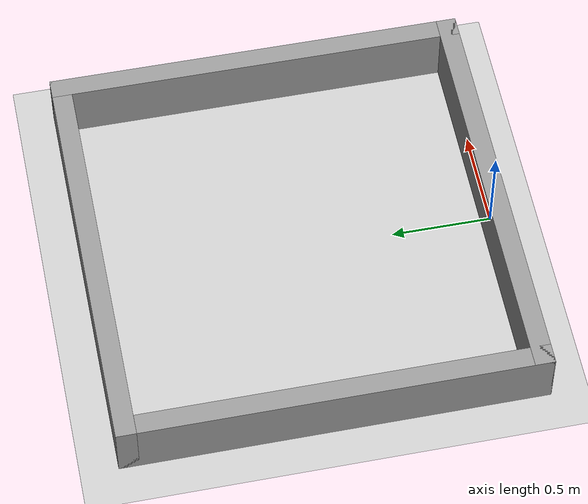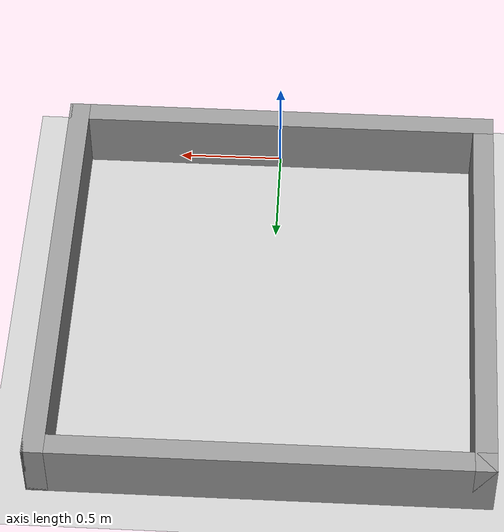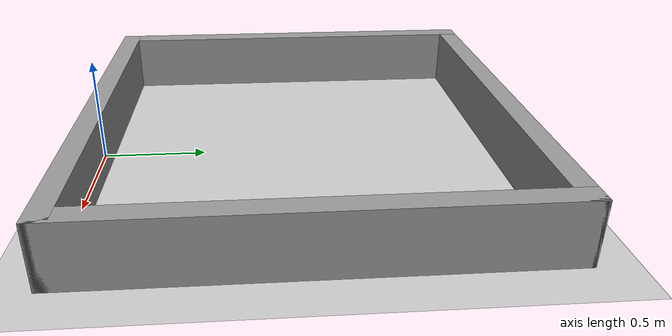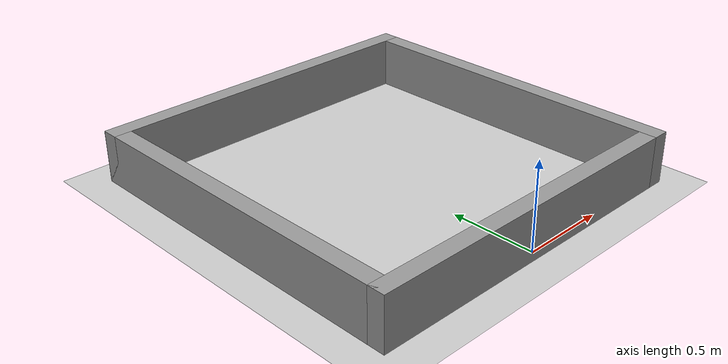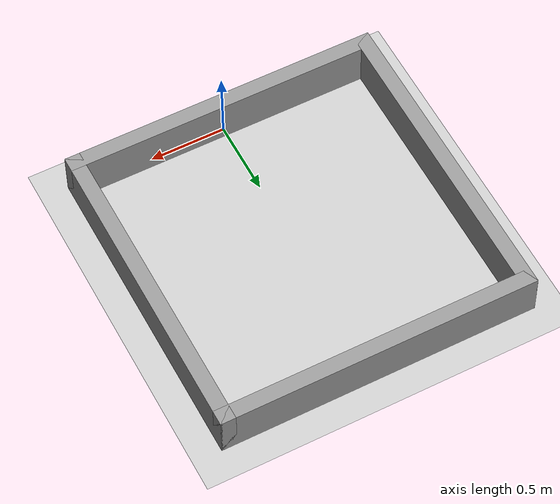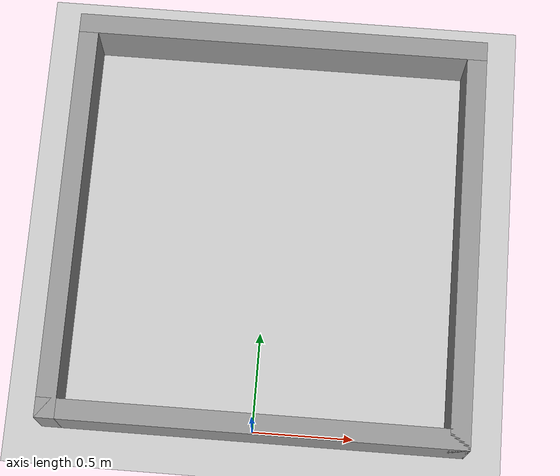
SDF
<sdf version="1.4">
  <world name="default">

    <scene>
      <ambient>0.4 0.4 0.4 1</ambient>
      <background>0.7 0.7 0.7 1</background>
      <shadows>true</shadows>
    </scene>

    <!-- A global light source -->
    <include>
      <uri>model://sun</uri>
    </include>

    <!-- A ground plane -->
    <include>
      <uri>model://ground_plane</uri>
    </include>

    <!-- Arena 2 -->
    <include>
      <uri>model://arena_2</uri>
        <pose> 0 1 0 0 0 0</pose>
    </include>

    <physics type="ode">
      <real_time_update_rate>1000.0</real_time_update_rate>
      <max_step_size>0.001</max_step_size>
      <real_time_factor>1</real_time_factor>
      <ode>
        <solver>
          <type>quick</type>
          <iters>150</iters>
          <precon_iters>0</precon_iters>
          <sor>1.400000</sor>
          <use_dynamic_moi_rescaling>1</use_dynamic_moi_rescaling>
        </solver>
        <constraints>
          <cfm>0.00001</cfm>
          <erp>0.2</erp>
          <contact_max_correcting_vel>2000.000000</contact_max_correcting_vel>
          <contact_surface_layer>0.01000</contact_surface_layer>
        </constraints>
      </ode>
    </physics>
  </world>

</sdf>

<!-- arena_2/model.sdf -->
<sdf version="1.5">
<model name="arena_2m">
    <static>true</static>
    <link name="north_wall">
      <pose>0 1 0.15 0 0 0</pose>
      <visual name="visual">
        <cast_shadows>false</cast_shadows>
        <geometry>
          <box>
            <size>2.1 0.1 .3</size>
          </box>
        </geometry>
        <material>
          <script>
            <name>Gazebo/Grey</name>
            <uri>file://media/materials/scripts/gazebo.material</uri>
          </script>
        </material>
      </visual>
      <collision name="collision">
        <geometry>
          <box>
            <size>2.1 0.1 0.3</size>
          </box>
        </geometry>
      </collision>
    </link>
    <link name="south_wall">
      <pose>0 -1 0.15 0 0 0</pose>
      <visual name="visual">
        <cast_shadows>false</cast_shadows>
        <geometry>
          <box>
            <size>2.1 0.1 0.3</size>
          </box>
        </geometry>
        <material>
          <script>
            <name>Gazebo/Grey</name>
            <uri>file://media/materials/scripts/gazebo.material</uri>
          </script>
        </material>
      </visual>
      <collision name="collision">
        <geometry>
          <box>
            <size>2.1 0.1 0.3</size>
          </box>
        </geometry>
      </collision>
    </link>
    <link name="east_wall">
      <pose>1 0 0.15 0 0 0</pose>
      <visual name="visual">
        <cast_shadows>false</cast_shadows>
        <geometry>
          <box>
            <size>0.1 2.1 0.3</size>
          </box>
        </geometry>
        <material>
          <script>
            <name>Gazebo/Grey</name>
            <uri>file://media/materials/scripts/gazebo.material</uri>
          </script>
        </material>
      </visual>
      <collision name="collision">
        <geometry>
          <box>
            <size>0.1 2.1 0.3</size>
          </box>
        </geometry>
      </collision>
    </link>
    <link name="west_wall">
      <pose>-1 0 0.15 0 0 0</pose>
      <visual name="visual">
        <cast_shadows>false</cast_shadows>
        <geometry>
          <box>
            <size>0.1 2.1 0.3</size>
          </box>
        </geometry>
        <material>
          <script>
            <name>Gazebo/Grey</name>
            <uri>file://media/materials/scripts/gazebo.material</uri>
          </script>
        </material>
      </visual>
      <collision name="collision">
        <geometry>
          <box>
            <size>0.1 2.1 0.3</size>
          </box>
        </geometry>
      </collision>
    </link>
  </model>
</sdf>
